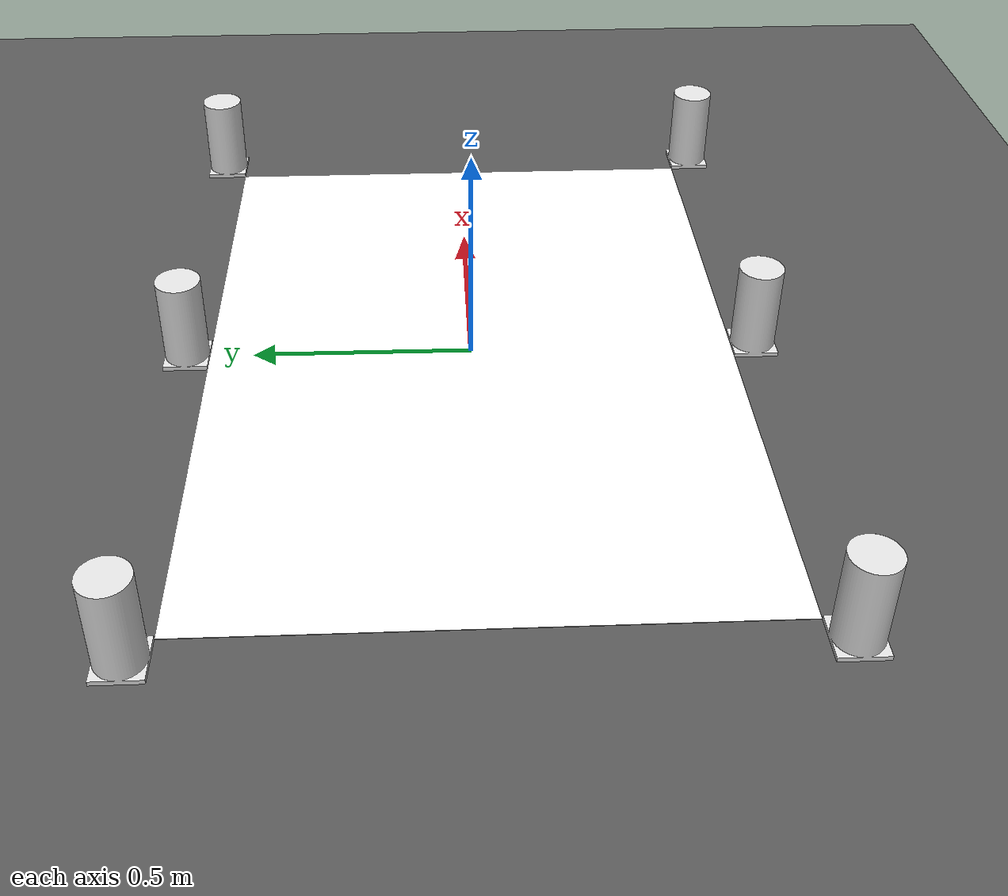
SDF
<sdf version="1.9">
 <world name="factory_world">
  <physics name="1ms" type="ignored">
   <max_step_size>0.001</max_step_size>
   <real_time_factor>1.0</real_time_factor>
  </physics>
  <gravity>0 0 -9.81</gravity>
  <plugin filename="gz-sim-physics-system" name="gz::sim::systems::Physics"/>
  <plugin filename="gz-sim-user-commands-system" name="gz::sim::systems::UserCommands"/>
  <plugin filename="gz-sim-scene-broadcaster-system" name="gz::sim::systems::SceneBroadcaster"/>
  <plugin filename="gz-sim-sensors-system" name="gz::sim::systems::Sensors">
   <render_engine>ogre2</render_engine>
  </plugin>
  <plugin filename="gz-sim-imu-system" name="gz::sim::systems::Imu"/>
  <light type="directional" name="sun">
   <pose>0 0 10 0 0 0</pose>
   <diffuse>0.9 0.9 0.9 1</diffuse>
   <specular>0.2 0.2 0.2 1</specular>
   <direction>-0.5 0.1 -0.9</direction>
  </light>
  <model name="ground_plane">
   <static>true</static>
   <link name="link">
    <collision name="collision">
     <geometry><plane><normal>0 0 1</normal><size>20 20</size></plane></geometry>
     <surface><friction><ode><mu>1.0</mu><mu2>1.0</mu2></ode></friction></surface>
    </collision>
    <visual name="visual">
     <geometry><plane><normal>0 0 1</normal><size>20 20</size></plane></geometry>
     <material><ambient>0.35 0.35 0.35 1</ambient><diffuse>0.35 0.35 0.35 1</diffuse></material>
    </visual>
   </link>
  </model>
  <model name="factory_floor">
   <static>true</static>
   <pose>0 0 0.001 0 0 0</pose>
   <link name="link">
    <visual name="visual">
     <cast_shadows>false</cast_shadows>
     <geometry><plane><normal>0 0 1</normal><size>1.7 1.2</size></plane></geometry>
     <material>
      <diffuse>1 1 1 1</diffuse>
      <specular>0 0 0 1</specular>
      <pbr>
       <metal>
        <albedo_map>model://my_bot/worlds/textures/floor.png</albedo_map>
        <metalness>0.0</metalness>
        <roughness>1.0</roughness>
       </metal>
      </pbr>
     </material>
    </visual>
   </link>
  </model>
  <model name="pilar_tl">
   <static>true</static>
   <pose>-0.900 0.650 0 0 0 0</pose>
   <link name="link">
    <collision name="collision">
     <pose>0 0 0.105 0 0 0</pose>
     <geometry><cylinder><radius>0.05</radius><length>0.21</length></cylinder></geometry>
    </collision>
    <visual name="visual">
     <geometry>
      <mesh><uri>model://my_bot/description/meshes/pilar.stl</uri><scale>0.001 0.001 0.001</scale></mesh>
     </geometry>
     <material>
      <ambient>0.9 0.9 0.9 1</ambient>
      <diffuse>0.9 0.9 0.9 1</diffuse>
      <specular>0 0 0 1</specular>
     </material>
    </visual>
   </link>
  </model>
  <model name="pilar_tr">
   <static>true</static>
   <pose>0.900 0.650 0 0 0 0</pose>
   <link name="link">
    <collision name="collision">
     <pose>0 0 0.105 0 0 0</pose>
     <geometry><cylinder><radius>0.05</radius><length>0.21</length></cylinder></geometry>
    </collision>
    <visual name="visual">
     <geometry>
      <mesh><uri>model://my_bot/description/meshes/pilar.stl</uri><scale>0.001 0.001 0.001</scale></mesh>
     </geometry>
     <material>
      <ambient>0.9 0.9 0.9 1</ambient>
      <diffuse>0.9 0.9 0.9 1</diffuse>
      <specular>0 0 0 1</specular>
     </material>
    </visual>
   </link>
  </model>
  <model name="pilar_bl">
   <static>true</static>
   <pose>-0.900 -0.650 0 0 0 0</pose>
   <link name="link">
    <collision name="collision">
     <pose>0 0 0.105 0 0 0</pose>
     <geometry><cylinder><radius>0.05</radius><length>0.21</length></cylinder></geometry>
    </collision>
    <visual name="visual">
     <geometry>
      <mesh><uri>model://my_bot/description/meshes/pilar.stl</uri><scale>0.001 0.001 0.001</scale></mesh>
     </geometry>
     <material>
      <ambient>0.9 0.9 0.9 1</ambient>
      <diffuse>0.9 0.9 0.9 1</diffuse>
      <specular>0 0 0 1</specular>
     </material>
    </visual>
   </link>
  </model>
  <model name="pilar_br">
   <static>true</static>
   <pose>0.900 -0.650 0 0 0 0</pose>
   <link name="link">
    <collision name="collision">
     <pose>0 0 0.105 0 0 0</pose>
     <geometry><cylinder><radius>0.05</radius><length>0.21</length></cylinder></geometry>
    </collision>
    <visual name="visual">
     <geometry>
      <mesh><uri>model://my_bot/description/meshes/pilar.stl</uri><scale>0.001 0.001 0.001</scale></mesh>
     </geometry>
     <material>
      <ambient>0.9 0.9 0.9 1</ambient>
      <diffuse>0.9 0.9 0.9 1</diffuse>
      <specular>0 0 0 1</specular>
     </material>
    </visual>
   </link>
  </model>
  <model name="pilar_mt">
   <static>true</static>
   <pose>0.000 0.650 0 0 0 0</pose>
   <link name="link">
    <collision name="collision">
     <pose>0 0 0.105 0 0 0</pose>
     <geometry><cylinder><radius>0.05</radius><length>0.21</length></cylinder></geometry>
    </collision>
    <visual name="visual">
     <geometry>
      <mesh><uri>model://my_bot/description/meshes/pilar.stl</uri><scale>0.001 0.001 0.001</scale></mesh>
     </geometry>
     <material>
      <ambient>0.9 0.9 0.9 1</ambient>
      <diffuse>0.9 0.9 0.9 1</diffuse>
      <specular>0 0 0 1</specular>
     </material>
    </visual>
   </link>
  </model>
  <model name="pilar_mb">
   <static>true</static>
   <pose>0.000 -0.650 0 0 0 0</pose>
   <link name="link">
    <collision name="collision">
     <pose>0 0 0.105 0 0 0</pose>
     <geometry><cylinder><radius>0.05</radius><length>0.21</length></cylinder></geometry>
    </collision>
    <visual name="visual">
     <geometry>
      <mesh><uri>model://my_bot/description/meshes/pilar.stl</uri><scale>0.001 0.001 0.001</scale></mesh>
     </geometry>
     <material>
      <ambient>0.9 0.9 0.9 1</ambient>
      <diffuse>0.9 0.9 0.9 1</diffuse>
      <specular>0 0 0 1</specular>
     </material>
    </visual>
   </link>
  </model>
 </world>
</sdf>
